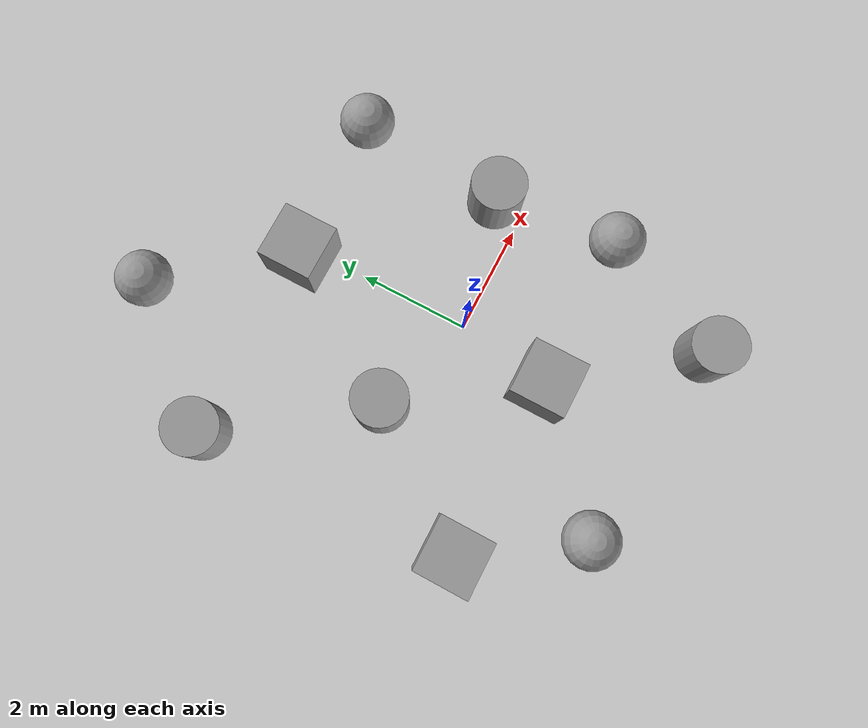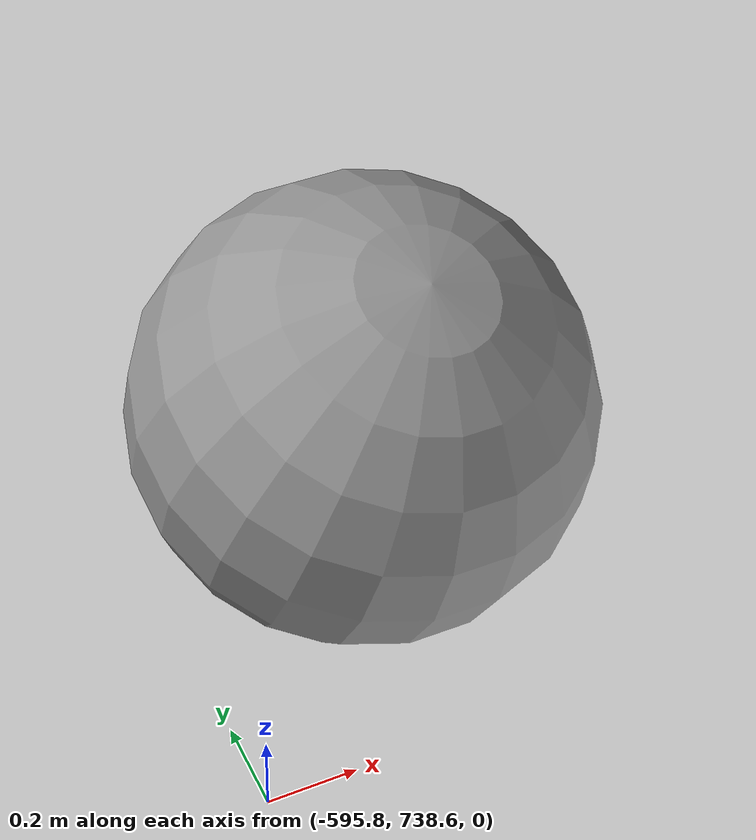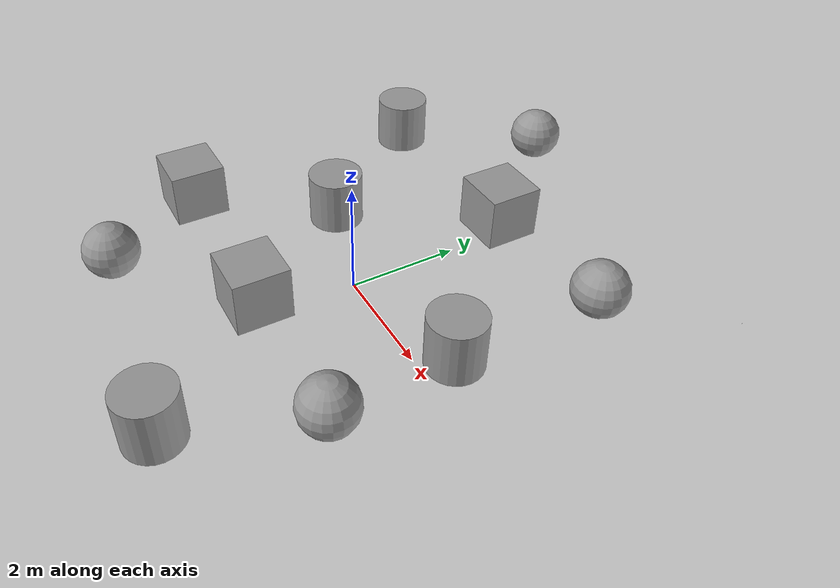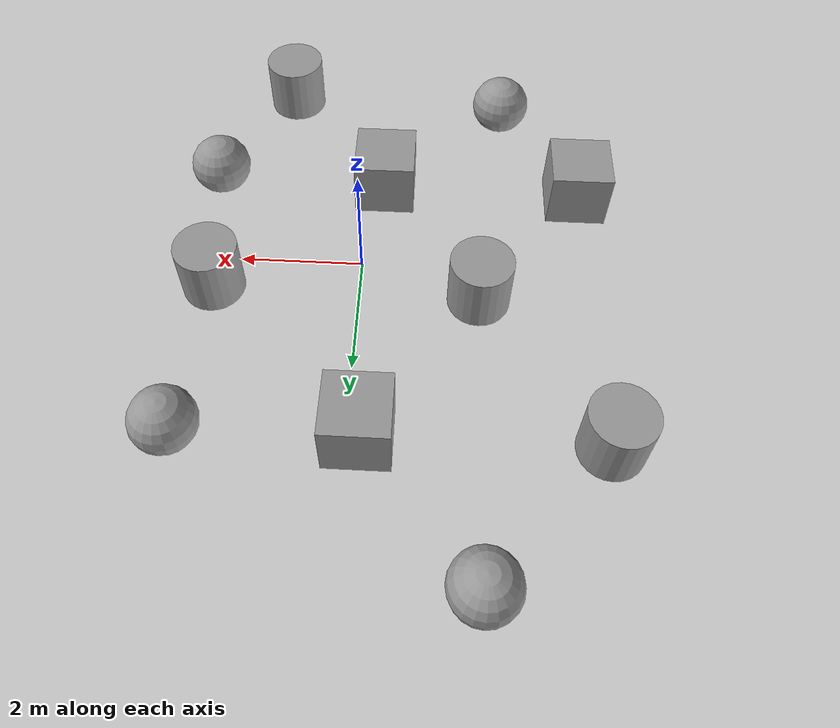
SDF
<sdf version="1.7">
 <world name="default">
  <light name="sun" type="directional">
   <pose>0 0 10 0 -0 0</pose>
   <diffuse>0.8 0.8 0.8 1</diffuse>
   <specular>0.2 0.2 0.2 1</specular>
   <attenuation>
    <range>1000</range>
    <constant>0.9</constant>
    <linear>0.01</linear>
    <quadratic>0.001</quadratic>
   </attenuation>
   <direction>-0.5 0.1 -0.9</direction>
   <spot><inner_angle>0</inner_angle><outer_angle>0</outer_angle><falloff>0</falloff></spot>
  </light>
  <model name="ground_plane">
   <static>1</static>
   <link name="link">
    <collision name="collision">
     <geometry><plane><normal>0 0 1</normal><size>100 100</size></plane></geometry>
     <surface>
      <contact><collide_bitmask>65535</collide_bitmask></contact>
      <friction><ode><mu>100</mu><mu2>50</mu2></ode></friction>
     </surface>
    </collision>
    <visual name="visual">
     <cast_shadows>0</cast_shadows>
     <geometry><plane><normal>0 0 1</normal><size>100 100</size></plane></geometry>
     <material>
      <script><uri>file://media/materials/scripts/gazebo.material</uri><name>Gazebo/Grey</name></script>
     </material>
    </visual>
   </link>
  </model>
  <gravity>0 0 -9.8</gravity>
  <magnetic_field>6e-06 2.3e-05 -4.2e-05</magnetic_field>
  <atmosphere type="adiabatic"/>
  <physics type="ode">
   <max_step_size>0.001</max_step_size>
   <real_time_factor>1</real_time_factor>
   <real_time_update_rate>1000</real_time_update_rate>
  </physics>
  <scene><ambient>0.4 0.4 0.4 1</ambient><background>0.7 0.7 0.7 1</background><shadows>1</shadows></scene>
  <spherical_coordinates>
   <surface_model>EARTH_WGS84</surface_model>
   <latitude_deg>0</latitude_deg>
   <longitude_deg>0</longitude_deg>
   <elevation>0</elevation>
   <heading_deg>0</heading_deg>
  </spherical_coordinates>
  <model name="unit_box">
   <pose>-3.58846 -1.63105 0.5 0 -0 0</pose>
   <link name="link">
    <inertial>
     <mass>1</mass>
     <inertia>
      <ixx>0.166667</ixx>
      <ixy>0</ixy>
      <ixz>0</ixz>
      <iyy>0.166667</iyy>
      <iyz>0</iyz>
      <izz>0.166667</izz>
     </inertia>
    </inertial>
    <collision name="collision"><geometry><box><size>1 1 1</size></box></geometry></collision>
    <visual name="visual">
     <geometry><box><size>1 1 1</size></box></geometry>
     <material>
      <script><name>Gazebo/Grey</name><uri>file://media/materials/scripts/gazebo.material</uri></script>
     </material>
    </visual>
   </link>
  </model>
  <model name="unit_sphere">
   <pose>-595.359 739.112 0.5 0.277565 0.198336 -0.053809</pose>
   <link name="link">
    <inertial>
     <mass>1</mass>
     <inertia><ixx>0.1</ixx><ixy>0</ixy><ixz>0</ixz><iyy>0.1</iyy><iyz>0</iyz><izz>0.1</izz></inertia>
    </inertial>
    <collision name="collision"><geometry><sphere><radius>0.5</radius></sphere></geometry></collision>
    <visual name="visual">
     <geometry><sphere><radius>0.5</radius></sphere></geometry>
     <material>
      <script><name>Gazebo/Grey</name><uri>file://media/materials/scripts/gazebo.material</uri></script>
     </material>
    </visual>
   </link>
  </model>
  <model name="unit_cylinder">
   <pose>-3.78192 3.14315 0.499992 -3e-06 3e-06 0</pose>
   <link name="link">
    <inertial>
     <mass>1</mass>
     <inertia><ixx>0.145833</ixx><ixy>0</ixy><ixz>0</ixz><iyy>0.145833</iyy><iyz>0</iyz><izz>0.125</izz></inertia>
    </inertial>
    <collision name="collision">
     <geometry><cylinder><radius>0.5</radius><length>1</length></cylinder></geometry>
    </collision>
    <visual name="visual">
     <geometry><cylinder><radius>0.5</radius><length>1</length></cylinder></geometry>
     <material>
      <script><name>Gazebo/Grey</name><uri>file://media/materials/scripts/gazebo.material</uri></script>
     </material>
    </visual>
   </link>
  </model>
  <model name="unit_box_0">
   <pose>-0.296327 -1.70931 0.5 -0 -0 -0</pose>
   <link name="link">
    <inertial>
     <mass>1</mass>
     <inertia>
      <ixx>0.166667</ixx>
      <ixy>0</ixy>
      <ixz>0</ixz>
      <iyy>0.166667</iyy>
      <iyz>0</iyz>
      <izz>0.166667</izz>
     </inertia>
    </inertial>
    <collision name="collision"><geometry><box><size>1 1 1</size></box></geometry></collision>
    <visual name="visual">
     <geometry><box><size>1 1 1</size></box></geometry>
     <material>
      <script><name>Gazebo/Grey</name><uri>file://media/materials/scripts/gazebo.material</uri></script>
     </material>
    </visual>
   </link>
  </model>
  <model name="unit_box_1">
   <pose>-0.197147 3.15767 0.5 0 -0 0</pose>
   <link name="link">
    <inertial>
     <mass>1</mass>
     <inertia>
      <ixx>0.166667</ixx>
      <ixy>0</ixy>
      <ixz>0</ixz>
      <iyy>0.166667</iyy>
      <iyz>0</iyz>
      <izz>0.166667</izz>
     </inertia>
    </inertial>
    <collision name="collision"><geometry><box><size>1 1 1</size></box></geometry></collision>
    <visual name="visual">
     <geometry><box><size>1 1 1</size></box></geometry>
     <material>
      <script><name>Gazebo/Grey</name><uri>file://media/materials/scripts/gazebo.material</uri></script>
     </material>
    </visual>
   </link>
  </model>
  <model name="unit_sphere_0">
   <pose>2.57814 -1.71916 0.5 0 -0 0</pose>
   <link name="link">
    <inertial>
     <mass>1</mass>
     <inertia><ixx>0.1</ixx><ixy>0</ixy><ixz>0</ixz><iyy>0.1</iyy><iyz>0</iyz><izz>0.1</izz></inertia>
    </inertial>
    <collision name="collision"><geometry><sphere><radius>0.5</radius></sphere></geometry></collision>
    <visual name="visual">
     <geometry><sphere><radius>0.5</radius></sphere></geometry>
     <material>
      <script><name>Gazebo/Grey</name><uri>file://media/materials/scripts/gazebo.material</uri></script>
     </material>
    </visual>
   </link>
  </model>
  <model name="unit_sphere_1">
   <pose>2.49635 3.28097 0.5 0 -0 0</pose>
   <link name="link">
    <inertial>
     <mass>1</mass>
     <inertia><ixx>0.1</ixx><ixy>0</ixy><ixz>0</ixz><iyy>0.1</iyy><iyz>0</iyz><izz>0.1</izz></inertia>
    </inertial>
    <collision name="collision"><geometry><sphere><radius>0.5</radius></sphere></geometry></collision>
    <visual name="visual">
     <geometry><sphere><radius>0.5</radius></sphere></geometry>
     <material>
      <script><name>Gazebo/Grey</name><uri>file://media/materials/scripts/gazebo.material</uri></script>
     </material>
    </visual>
   </link>
  </model>
  <model name="unit_cylinder_0">
   <pose>2.35586 0.561682 0.499998 3e-06 -4e-06 0</pose>
   <link name="link">
    <inertial>
     <mass>1</mass>
     <inertia><ixx>0.145833</ixx><ixy>0</ixy><ixz>0</ixz><iyy>0.145833</iyy><iyz>0</iyz><izz>0.125</izz></inertia>
    </inertial>
    <collision name="collision">
     <geometry><cylinder><radius>0.5</radius><length>1</length></cylinder></geometry>
    </collision>
    <visual name="visual">
     <geometry><cylinder><radius>0.5</radius><length>1</length></cylinder></geometry>
     <material>
      <script><name>Gazebo/Grey</name><uri>file://media/materials/scripts/gazebo.material</uri></script>
     </material>
    </visual>
   </link>
  </model>
  <model name="unit_sphere_2">
   <pose>-2.31081 -3.53783 0.5 0 -0 0</pose>
   <link name="link">
    <inertial>
     <mass>1</mass>
     <inertia><ixx>0.1</ixx><ixy>0</ixy><ixz>0</ixz><iyy>0.1</iyy><iyz>0</iyz><izz>0.1</izz></inertia>
    </inertial>
    <collision name="collision"><geometry><sphere><radius>0.5</radius></sphere></geometry></collision>
    <visual name="visual">
     <geometry><sphere><radius>0.5</radius></sphere></geometry>
     <material>
      <script><name>Gazebo/Grey</name><uri>file://media/materials/scripts/gazebo.material</uri></script>
     </material>
    </visual>
   </link>
  </model>
  <model name="unit_sphere_3">
   <pose>-1.94867 5.32641 0.5 0 -0 0</pose>
   <link name="link">
    <inertial>
     <mass>1</mass>
     <inertia><ixx>0.1</ixx><ixy>0</ixy><ixz>0</ixz><iyy>0.1</iyy><iyz>0</iyz><izz>0.1</izz></inertia>
    </inertial>
    <collision name="collision"><geometry><sphere><radius>0.5</radius></sphere></geometry></collision>
    <visual name="visual">
     <geometry><sphere><radius>0.5</radius></sphere></geometry>
     <material>
      <script><name>Gazebo/Grey</name><uri>file://media/materials/scripts/gazebo.material</uri></script>
     </material>
    </visual>
   </link>
  </model>
  <model name="unit_cylinder_1">
   <pose>1.53475 -3.987 0.499993 -3e-06 -3e-06 0</pose>
   <link name="link">
    <inertial>
     <mass>1</mass>
     <inertia><ixx>0.145833</ixx><ixy>0</ixy><ixz>0</ixz><iyy>0.145833</iyy><iyz>0</iyz><izz>0.125</izz></inertia>
    </inertial>
    <collision name="collision">
     <geometry><cylinder><radius>0.5</radius><length>1</length></cylinder></geometry>
    </collision>
    <visual name="visual">
     <geometry><cylinder><radius>0.5</radius><length>1</length></cylinder></geometry>
     <material>
      <script><name>Gazebo/Grey</name><uri>file://media/materials/scripts/gazebo.material</uri></script>
     </material>
    </visual>
   </link>
  </model>
  <model name="unit_cylinder_2">
   <pose>-1.91821 0.626161 0.499993 -3e-06 -3e-06 0</pose>
   <link name="link">
    <inertial>
     <mass>1</mass>
     <inertia><ixx>0.145833</ixx><ixy>0</ixy><ixz>0</ixz><iyy>0.145833</iyy><iyz>0</iyz><izz>0.125</izz></inertia>
    </inertial>
    <collision name="collision">
     <geometry><cylinder><radius>0.5</radius><length>1</length></cylinder></geometry>
    </collision>
    <visual name="visual">
     <geometry><cylinder><radius>0.5</radius><length>1</length></cylinder></geometry>
     <material>
      <script><name>Gazebo/Grey</name><uri>file://media/materials/scripts/gazebo.material</uri></script>
     </material>
    </visual>
   </link>
  </model>
 </world>
</sdf>
